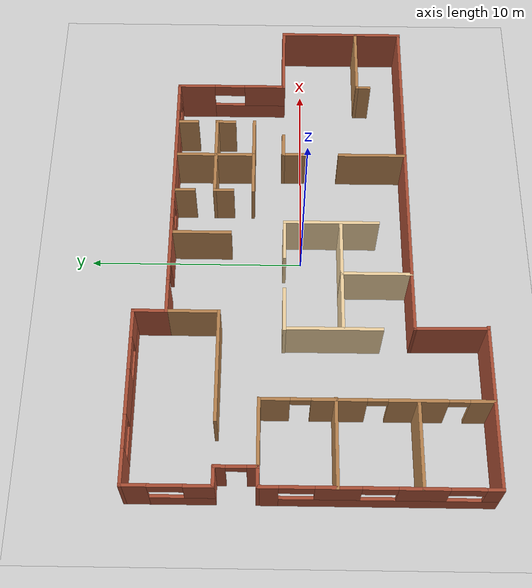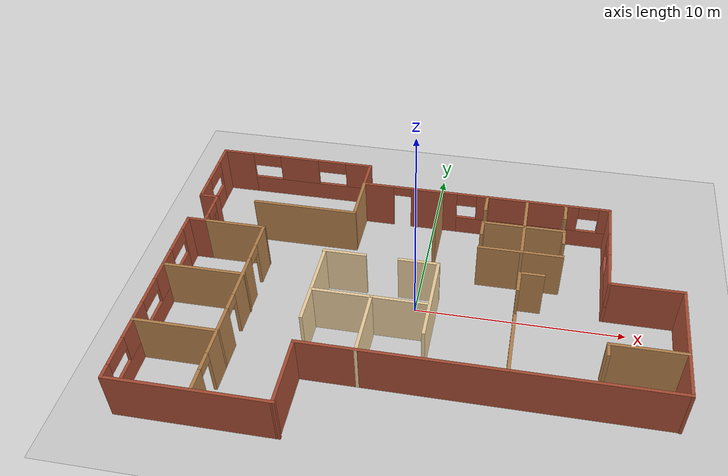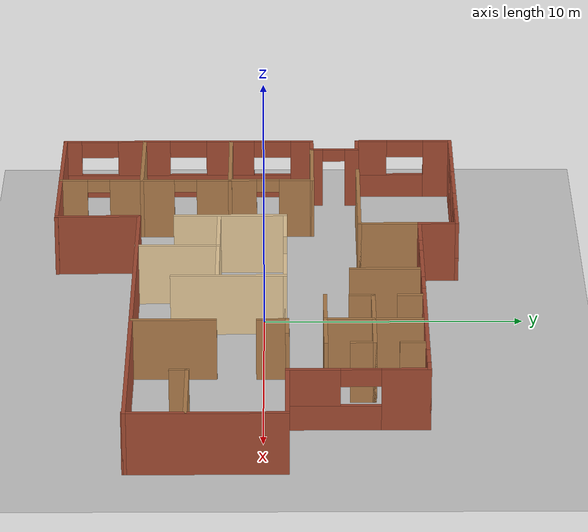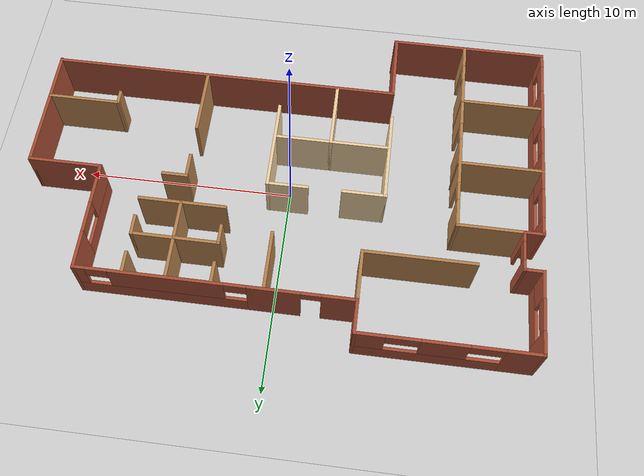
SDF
<sdf version="1.6">
 <world name="default">
  <model name="ground_plane">
   <static>1</static>
   <link name="link">
    <collision name="collision">
     <geometry><plane><normal>0 0 1</normal><size>100 100</size></plane></geometry>
     <surface>
      <contact><collide_bitmask>65535</collide_bitmask></contact>
      <friction><ode><mu>100</mu><mu2>50</mu2></ode></friction>
     </surface>
    </collision>
    <visual name="visual">
     <cast_shadows>0</cast_shadows>
     <geometry><plane><normal>0 0 1</normal><size>100 100</size></plane></geometry>
     <material>
      <script><uri>file://media/materials/scripts/gazebo.material</uri><name>Gazebo/Grey</name></script>
     </material>
    </visual>
   </link>
  </model>
  <model name="MyUdacityOffice">
   <pose>0.26489 -0.33383 0 0 -0 0</pose>
   <link name="Wall_100">
    <collision name="Wall_100_Collision">
     <geometry><box><size>2.089 0.15 2.5</size></box></geometry>
     <pose>0 0 1.25 0 -0 0</pose>
    </collision>
    <visual name="Wall_100_Visual">
     <pose>0 0 1.25 0 -0 0</pose>
     <geometry><box><size>2.089 0.15 2.5</size></box></geometry>
     <material>
      <script><uri>file://media/materials/scripts/gazebo.material</uri><name>Gazebo/Wood</name></script>
      <ambient>0.760784 0.662745 0.627451 1</ambient>
     </material>
     <meta><layer>0</layer></meta>
    </visual>
    <pose>5.4385 2.65847 0 0 -0 0</pose>
   </link>
   <link name="Wall_102">
    <collision name="Wall_102_Collision">
     <geometry><box><size>3.531 0.15 2.5</size></box></geometry>
     <pose>0 0 1.25 0 -0 0</pose>
    </collision>
    <visual name="Wall_102_Visual">
     <pose>0 0 1.25 0 -0 0</pose>
     <geometry><box><size>3.531 0.15 2.5</size></box></geometry>
     <material>
      <script><uri>file://media/materials/scripts/gazebo.material</uri><name>Gazebo/Bricks</name></script>
      <ambient>0.760784 0.662745 0.627451 1</ambient>
     </material>
     <meta><layer>0</layer></meta>
    </visual>
    <pose>10.2845 1.22547 0 0 -0 0</pose>
   </link>
   <link name="Wall_106">
    <collision name="Wall_106_Collision">
     <geometry><box><size>1.637 0.15 2.5</size></box></geometry>
     <pose>0 0 1.25 0 -0 0</pose>
    </collision>
    <visual name="Wall_106_Visual">
     <pose>0 0 1.25 0 -0 0</pose>
     <geometry><box><size>1.637 0.15 2.5</size></box></geometry>
     <material>
      <script><uri>file://media/materials/scripts/gazebo.material</uri><name>Gazebo/Bricks</name></script>
      <ambient>0.760784 0.662745 0.627451 1</ambient>
     </material>
     <meta><layer>0</layer></meta>
    </visual>
    <pose>-3.975 7.18196 0 0 0 -1.5708</pose>
   </link>
   <link name="Wall_108">
    <collision name="Wall_108_Collision">
     <geometry><box><size>2.513 0.15 2.5</size></box></geometry>
     <pose>0 0 1.25 0 -0 0</pose>
    </collision>
    <visual name="Wall_108_Visual">
     <pose>0 0 1.25 0 -0 0</pose>
     <geometry><box><size>2.513 0.15 2.5</size></box></geometry>
     <material>
      <script><uri>file://media/materials/scripts/gazebo.material</uri><name>Gazebo/Wood</name></script>
      <ambient>0.760784 0.662745 0.627451 1</ambient>
     </material>
     <meta><layer>0</layer></meta>
    </visual>
    <pose>-3.975 5.25697 0 0 0 -1.5708</pose>
   </link>
   <link name="Wall_110">
    <collision name="Wall_110_Collision">
     <geometry><box><size>5.25 0.15 2.5</size></box></geometry>
     <pose>0 0 1.25 0 -0 0</pose>
    </collision>
    <visual name="Wall_110_Visual">
     <pose>0 0 1.25 0 -0 0</pose>
     <geometry><box><size>5.25 0.15 2.5</size></box></geometry>
     <material>
      <script><uri>file://media/materials/scripts/gazebo.material</uri><name>Gazebo/Wood</name></script>
      <ambient>0.760784 0.662745 0.627451 1</ambient>
     </material>
     <meta><layer>0</layer></meta>
    </visual>
    <pose>-6.525 4.07547 0 0 -0 3.14159</pose>
   </link>
   <link name="Wall_112">
    <collision name="Wall_112_Collision">
     <geometry><box><size>3.508 0.15 2.5</size></box></geometry>
     <pose>0 0 1.25 0 -0 0</pose>
    </collision>
    <visual name="Wall_112_Visual">
     <pose>0 0 1.25 0 -0 0</pose>
     <geometry><box><size>3.508 0.15 2.5</size></box></geometry>
     <material>
      <script><uri>file://media/materials/scripts/gazebo.material</uri><name>Gazebo/Wood</name></script>
      <ambient>0.760784 0.662745 0.627451 1</ambient>
     </material>
     <meta><layer>0</layer></meta>
    </visual>
    <pose>10.273 -2.44954 0 0 -0 3.14159</pose>
   </link>
   <link name="Wall_115">
    <collision name="Wall_115_Collision">
     <geometry><box><size>0.75 0.15 2.5</size></box></geometry>
     <pose>0 0 1.25 0 -0 0</pose>
    </collision>
    <visual name="Wall_115_Visual">
     <pose>0 0 1.25 0 -0 0</pose>
     <geometry><box><size>0.75 0.15 2.5</size></box></geometry>
     <material>
      <script><uri>file://media/materials/scripts/gazebo.material</uri><name>Gazebo/Wood</name></script>
      <ambient>0.760784 0.662745 0.627451 1</ambient>
     </material>
     <meta><layer>0</layer></meta>
    </visual>
    <pose>8.594 -2.74953 0 0 0 -1.5708</pose>
   </link>
   <link name="Wall_117">
    <collision name="Wall_117_Collision">
     <geometry><box><size>1.25 0.15 2.5</size></box></geometry>
     <pose>0 0 1.25 0 -0 0</pose>
    </collision>
    <visual name="Wall_117_Visual">
     <pose>0 0 1.25 0 -0 0</pose>
     <geometry><box><size>1.25 0.15 2.5</size></box></geometry>
     <material>
      <script><uri>file://media/materials/scripts/gazebo.material</uri><name>Gazebo/Wood</name></script>
      <ambient>0.760784 0.662745 0.627451 1</ambient>
     </material>
     <meta><layer>0</layer></meta>
    </visual>
    <pose>5.055 1.22547 0 0 -0 0</pose>
   </link>
   <link name="Wall_119">
    <collision name="Wall_119_Collision">
     <geometry><box><size>1.25 0.15 2.5</size></box></geometry>
     <pose>0 0 1.25 0 -0 0</pose>
    </collision>
    <visual name="Wall_119_Visual">
     <pose>0 0 1.25 0 -0 0</pose>
     <geometry><box><size>1.25 0.15 2.5</size></box></geometry>
     <material>
      <script><uri>file://media/materials/scripts/gazebo.material</uri><name>Gazebo/Wood</name></script>
      <ambient>0.760784 0.662745 0.627451 1</ambient>
     </material>
     <meta><layer>0</layer></meta>
    </visual>
    <pose>4.505 0.675465 0 0 0 -1.5708</pose>
   </link>
   <link name="Wall_12">
    <pose>-11.975 -2.84953 0 0 0 -1.5708</pose>
    <visual name="Wall_12_Visual_0">
     <pose>-4.67804 0 1.25 0 -0 0</pose>
     <geometry><box><size>0.943917 0.15 2.5</size></box></geometry>
     <material>
      <script><uri>file://media/materials/scripts/gazebo.material</uri><name>Gazebo/Bricks</name></script>
      <ambient>1 1 1 1</ambient>
     </material>
     <meta><layer>0</layer></meta>
    </visual>
    <collision name="Wall_12_Collision_0">
     <geometry><box><size>0.943917 0.15 2.5</size></box></geometry>
     <pose>-4.67804 0 1.25 0 -0 0</pose>
    </collision>
    <visual name="Wall_12_Visual_1">
     <pose>0.471958 0 0.5 0 -0 0</pose>
     <geometry><box><size>9.35608 0.15 1</size></box></geometry>
     <material>
      <script><uri>file://media/materials/scripts/gazebo.material</uri><name>Gazebo/Bricks</name></script>
      <ambient>1 1 1 1</ambient>
     </material>
     <meta><layer>0</layer></meta>
    </visual>
    <collision name="Wall_12_Collision_1">
     <geometry><box><size>9.35608 0.15 1</size></box></geometry>
     <pose>0.471958 0 0.5 0 -0 0</pose>
    </collision>
    <visual name="Wall_12_Visual_2">
     <pose>-1.72352 0 1.75 0 -0 0</pose>
     <geometry><box><size>1.96513 0.15 1.5</size></box></geometry>
     <material>
      <script><uri>file://media/materials/scripts/gazebo.material</uri><name>Gazebo/Bricks</name></script>
      <ambient>1 1 1 1</ambient>
     </material>
     <meta><layer>0</layer></meta>
    </visual>
    <collision name="Wall_12_Collision_2">
     <geometry><box><size>1.96513 0.15 1.5</size></box></geometry>
     <pose>-1.72352 0 1.75 0 -0 0</pose>
    </collision>
    <visual name="Wall_12_Visual_3">
     <pose>1.83263 0 1.75 0 -0 0</pose>
     <geometry><box><size>2.14718 0.15 1.5</size></box></geometry>
     <material>
      <script><uri>file://media/materials/scripts/gazebo.material</uri><name>Gazebo/Bricks</name></script>
      <ambient>1 1 1 1</ambient>
     </material>
     <meta><layer>0</layer></meta>
    </visual>
    <collision name="Wall_12_Collision_3">
     <geometry><box><size>2.14718 0.15 1.5</size></box></geometry>
     <pose>1.83263 0 1.75 0 -0 0</pose>
    </collision>
    <visual name="Wall_12_Visual_4">
     <pose>4.77811 0 1.75 0 -0 0</pose>
     <geometry><box><size>0.743774 0.15 1.5</size></box></geometry>
     <material>
      <script><uri>file://media/materials/scripts/gazebo.material</uri><name>Gazebo/Bricks</name></script>
      <ambient>1 1 1 1</ambient>
     </material>
     <meta><layer>0</layer></meta>
    </visual>
    <collision name="Wall_12_Collision_4">
     <geometry><box><size>0.743774 0.15 1.5</size></box></geometry>
     <pose>4.77811 0 1.75 0 -0 0</pose>
    </collision>
    <visual name="Wall_12_Visual_5">
     <pose>-3.45608 0 2.15 0 -0 0</pose>
     <geometry><box><size>1.5 0.15 0.7</size></box></geometry>
     <material>
      <script><uri>file://media/materials/scripts/gazebo.material</uri><name>Gazebo/Bricks</name></script>
      <ambient>1 1 1 1</ambient>
     </material>
     <meta><layer>0</layer></meta>
    </visual>
    <collision name="Wall_12_Collision_5">
     <geometry><box><size>1.5 0.15 0.7</size></box></geometry>
     <pose>-3.45608 0 2.15 0 -0 0</pose>
    </collision>
    <visual name="Wall_12_Visual_6">
     <pose>0.009042 0 2.15 0 -0 0</pose>
     <geometry><box><size>1.5 0.15 0.7</size></box></geometry>
     <material>
      <script><uri>file://media/materials/scripts/gazebo.material</uri><name>Gazebo/Bricks</name></script>
      <ambient>1 1 1 1</ambient>
     </material>
     <meta><layer>0</layer></meta>
    </visual>
    <collision name="Wall_12_Collision_6">
     <geometry><box><size>1.5 0.15 0.7</size></box></geometry>
     <pose>0.009042 0 2.15 0 -0 0</pose>
    </collision>
    <visual name="Wall_12_Visual_7">
     <pose>3.65623 0 2.15 0 -0 0</pose>
     <geometry><box><size>1.5 0.15 0.7</size></box></geometry>
     <material>
      <script><uri>file://media/materials/scripts/gazebo.material</uri><name>Gazebo/Bricks</name></script>
      <ambient>1 1 1 1</ambient>
     </material>
     <meta><layer>0</layer></meta>
    </visual>
    <collision name="Wall_12_Collision_7">
     <geometry><box><size>1.5 0.15 0.7</size></box></geometry>
     <pose>3.65623 0 2.15 0 -0 0</pose>
    </collision>
   </link>
   <link name="Wall_121">
    <collision name="Wall_121_Collision">
     <geometry><box><size>3.25 0.15 2.5</size></box></geometry>
     <pose>0 0 1.25 0 -0 0</pose>
    </collision>
    <visual name="Wall_121_Visual">
     <pose>0 0 1.25 0 -0 0</pose>
     <geometry><box><size>3.25 0.15 2.5</size></box></geometry>
     <material>
      <script><uri>file://media/materials/scripts/gazebo.material</uri><name>Gazebo/Wood</name></script>
      <ambient>0.760784 0.662745 0.627451 1</ambient>
     </material>
     <meta><layer>0</layer></meta>
    </visual>
    <pose>4.505 -3.04954 0 0 -0 1.5708</pose>
   </link>
   <link name="Wall_125">
    <collision name="Wall_125_Collision">
     <geometry><box><size>4.5 0.15 2.5</size></box></geometry>
     <pose>0 0 1.25 0 -0 0</pose>
    </collision>
    <visual name="Wall_125_Visual">
     <pose>0 0 1.25 0 -0 0</pose>
     <geometry><box><size>4.5 0.15 2.5</size></box></geometry>
     <material>
      <script><uri>file://media/materials/scripts/gazebo.material</uri><name>Gazebo/Grey</name></script>
      <ambient>0.921569 0.807843 0.615686 1</ambient>
     </material>
     <meta><layer>0</layer></meta>
    </visual>
    <pose>-4.75677 -1.03253 0 0 0 -1.5708</pose>
   </link>
   <link name="Wall_129">
    <collision name="Wall_129_Collision">
     <geometry><box><size>2.12236 0.15 2.5</size></box></geometry>
     <pose>0 0 1.25 0 -0 0</pose>
    </collision>
    <visual name="Wall_129_Visual">
     <pose>0 0 1.25 0 -0 0</pose>
     <geometry><box><size>2.12236 0.15 2.5</size></box></geometry>
     <material>
      <script><uri>file://media/materials/scripts/gazebo.material</uri><name>Gazebo/Grey</name></script>
      <ambient>0.921569 0.807843 0.615686 1</ambient>
     </material>
     <meta><layer>0</layer></meta>
    </visual>
    <pose>-3.80118 1.14247 0 0 -0 0</pose>
   </link>
   <link name="Wall_133">
    <collision name="Wall_133_Collision">
     <geometry><box><size>5.39282 0.15 2.5</size></box></geometry>
     <pose>0 0 1.25 0 -0 0</pose>
    </collision>
    <visual name="Wall_133_Visual">
     <pose>0 0 1.25 0 -0 0</pose>
     <geometry><box><size>5.39282 0.15 2.5</size></box></geometry>
     <material>
      <script><uri>file://media/materials/scripts/gazebo.material</uri><name>Gazebo/Grey</name></script>
      <ambient>0.921569 0.807843 0.615686 1</ambient>
     </material>
     <meta><layer>0</layer></meta>
    </visual>
    <pose>-2.04359 -1.47754 0 0 -0 0</pose>
   </link>
   <link name="Wall_136">
    <collision name="Wall_136_Collision">
     <geometry><box><size>3.328 0.15 2.5</size></box></geometry>
     <pose>0 0 1.25 0 -0 0</pose>
    </collision>
    <visual name="Wall_136_Visual">
     <pose>0 0 1.25 0 -0 0</pose>
     <geometry><box><size>3.328 0.15 2.5</size></box></geometry>
     <material>
      <script><uri>file://media/materials/scripts/gazebo.material</uri><name>Gazebo/Grey</name></script>
      <ambient>0.921569 0.807843 0.615686 1</ambient>
     </material>
     <meta><layer>0</layer></meta>
    </visual>
    <pose>-1.971 -3.06654 0 0 0 -1.5708</pose>
   </link>
   <link name="Wall_140">
    <collision name="Wall_140_Collision">
     <geometry><box><size>4.5 0.15 2.5</size></box></geometry>
     <pose>0 0 1.25 0 -0 0</pose>
    </collision>
    <visual name="Wall_140_Visual">
     <pose>0 0 1.25 0 -0 0</pose>
     <geometry><box><size>4.5 0.15 2.5</size></box></geometry>
     <material>
      <script><uri>file://media/materials/scripts/gazebo.material</uri><name>Gazebo/Grey</name></script>
      <ambient>0.921569 0.807843 0.615686 1</ambient>
     </material>
     <meta><layer>0</layer></meta>
    </visual>
    <pose>0.710001 -1.03253 0 0 -0 1.5708</pose>
   </link>
   <link name="Wall_142">
    <collision name="Wall_142_Collision">
     <geometry><box><size>2 0.15 2.5</size></box></geometry>
     <pose>0 0 1.25 0 -0 0</pose>
    </collision>
    <visual name="Wall_142_Visual">
     <pose>0 0 1.25 0 -0 0</pose>
     <geometry><box><size>2 0.15 2.5</size></box></geometry>
     <material>
      <script><uri>file://media/materials/scripts/gazebo.material</uri><name>Gazebo/Grey</name></script>
      <ambient>0.921569 0.807843 0.615686 1</ambient>
     </material>
     <meta><layer>0</layer></meta>
    </visual>
    <pose>-0.215 1.14247 0 0 -0 3.14159</pose>
   </link>
   <link name="Wall_15">
    <pose>-11.125 3.15047 0 0 0 -1.5708</pose>
    <visual name="Wall_15_Visual_0">
     <pose>-0.718002 0 1.25 0 -0 0</pose>
     <geometry><box><size>0.563996 0.15 2.5</size></box></geometry>
     <material>
      <script><uri>file://media/materials/scripts/gazebo.material</uri><name>Gazebo/Bricks</name></script>
      <ambient>0.760784 0.662745 0.627451 1</ambient>
     </material>
     <meta><layer>0</layer></meta>
    </visual>
    <collision name="Wall_15_Collision_0">
     <geometry><box><size>0.563996 0.15 2.5</size></box></geometry>
     <pose>-0.718002 0 1.25 0 -0 0</pose>
    </collision>
    <visual name="Wall_15_Visual_1">
     <pose>0.731998 0 1.25 0 -0 0</pose>
     <geometry><box><size>0.536004 0.15 2.5</size></box></geometry>
     <material>
      <script><uri>file://media/materials/scripts/gazebo.material</uri><name>Gazebo/Bricks</name></script>
      <ambient>0.760784 0.662745 0.627451 1</ambient>
     </material>
     <meta><layer>0</layer></meta>
    </visual>
    <collision name="Wall_15_Collision_1">
     <geometry><box><size>0.536004 0.15 2.5</size></box></geometry>
     <pose>0.731998 0 1.25 0 -0 0</pose>
    </collision>
    <visual name="Wall_15_Visual_2">
     <pose>0.013996 0 2.25 0 -0 0</pose>
     <geometry><box><size>0.9 0.15 0.5</size></box></geometry>
     <material>
      <script><uri>file://media/materials/scripts/gazebo.material</uri><name>Gazebo/Bricks</name></script>
      <ambient>0.760784 0.662745 0.627451 1</ambient>
     </material>
     <meta><layer>0</layer></meta>
    </visual>
    <collision name="Wall_15_Collision_2">
     <geometry><box><size>0.9 0.15 0.5</size></box></geometry>
     <pose>0.013996 0 2.25 0 -0 0</pose>
    </collision>
   </link>
   <link name="Wall_16">
    <collision name="Wall_16_Collision">
     <geometry><box><size>1 0.15 2.5</size></box></geometry>
     <pose>0 0 1.25 0 -0 0</pose>
    </collision>
    <visual name="Wall_16_Visual">
     <pose>0 0 1.25 0 -0 0</pose>
     <geometry><box><size>1 0.15 2.5</size></box></geometry>
     <material>
      <script><uri>file://media/materials/scripts/gazebo.material</uri><name>Gazebo/Bricks</name></script>
      <ambient>0.760784 0.662745 0.627451 1</ambient>
     </material>
     <meta><layer>0</layer></meta>
    </visual>
    <pose>-11.55 2.22546 0 0 -0 3.14159</pose>
   </link>
   <link name="Wall_3">
    <pose>-7.975 7.92546 0 0 -0 0</pose>
    <visual name="Wall_3_Visual_0">
     <pose>-3.24686 0 1.25 0 -0 0</pose>
     <geometry><box><size>1.65628 0.15 2.5</size></box></geometry>
     <material>
      <script><uri>file://media/materials/scripts/gazebo.material</uri><name>Gazebo/Bricks</name></script>
      <ambient>0.760784 0.662745 0.627451 1</ambient>
     </material>
     <meta><layer>0</layer></meta>
    </visual>
    <collision name="Wall_3_Collision_0">
     <geometry><box><size>1.65628 0.15 2.5</size></box></geometry>
     <pose>-3.24686 0 1.25 0 -0 0</pose>
    </collision>
    <visual name="Wall_3_Visual_1">
     <pose>0.828141 0 0.5 0 -0 0</pose>
     <geometry><box><size>6.49372 0.15 1</size></box></geometry>
     <material>
      <script><uri>file://media/materials/scripts/gazebo.material</uri><name>Gazebo/Bricks</name></script>
      <ambient>0.760784 0.662745 0.627451 1</ambient>
     </material>
     <meta><layer>0</layer></meta>
    </visual>
    <collision name="Wall_3_Collision_1">
     <geometry><box><size>6.49372 0.15 1</size></box></geometry>
     <pose>0.828141 0 0.5 0 -0 0</pose>
    </collision>
    <visual name="Wall_3_Visual_2">
     <pose>0.127007 0 1.75 0 -0 0</pose>
     <geometry><box><size>2.09145 0.15 1.5</size></box></geometry>
     <material>
      <script><uri>file://media/materials/scripts/gazebo.material</uri><name>Gazebo/Bricks</name></script>
      <ambient>0.760784 0.662745 0.627451 1</ambient>
     </material>
     <meta><layer>0</layer></meta>
    </visual>
    <collision name="Wall_3_Collision_2">
     <geometry><box><size>2.09145 0.15 1.5</size></box></geometry>
     <pose>0.127007 0 1.75 0 -0 0</pose>
    </collision>
    <visual name="Wall_3_Visual_3">
     <pose>3.37387 0 1.75 0 -0 0</pose>
     <geometry><box><size>1.40227 0.15 1.5</size></box></geometry>
     <material>
      <script><uri>file://media/materials/scripts/gazebo.material</uri><name>Gazebo/Bricks</name></script>
      <ambient>0.760784 0.662745 0.627451 1</ambient>
     </material>
     <meta><layer>0</layer></meta>
    </visual>
    <collision name="Wall_3_Collision_3">
     <geometry><box><size>1.40227 0.15 1.5</size></box></geometry>
     <pose>3.37387 0 1.75 0 -0 0</pose>
    </collision>
    <visual name="Wall_3_Visual_4">
     <pose>-1.66872 0 2.15 0 -0 0</pose>
     <geometry><box><size>1.5 0.15 0.7</size></box></geometry>
     <material>
      <script><uri>file://media/materials/scripts/gazebo.material</uri><name>Gazebo/Bricks</name></script>
      <ambient>0.760784 0.662745 0.627451 1</ambient>
     </material>
     <meta><layer>0</layer></meta>
    </visual>
    <collision name="Wall_3_Collision_4">
     <geometry><box><size>1.5 0.15 0.7</size></box></geometry>
     <pose>-1.66872 0 2.15 0 -0 0</pose>
    </collision>
    <visual name="Wall_3_Visual_5">
     <pose>1.92273 0 2.15 0 -0 0</pose>
     <geometry><box><size>1.5 0.15 0.7</size></box></geometry>
     <material>
      <script><uri>file://media/materials/scripts/gazebo.material</uri><name>Gazebo/Bricks</name></script>
      <ambient>0.760784 0.662745 0.627451 1</ambient>
     </material>
     <meta><layer>0</layer></meta>
    </visual>
    <collision name="Wall_3_Collision_5">
     <geometry><box><size>1.5 0.15 0.7</size></box></geometry>
     <pose>1.92273 0 2.15 0 -0 0</pose>
    </collision>
   </link>
   <link name="Wall_30">
    <collision name="Wall_30_Collision">
     <geometry><box><size>4.05876 0.15 2.5</size></box></geometry>
     <pose>0 0 1.25 0 -0 0</pose>
    </collision>
    <visual name="Wall_30_Visual">
     <pose>0 0 1.25 0 -0 0</pose>
     <geometry><box><size>4.05876 0.15 2.5</size></box></geometry>
     <material>
      <script><uri>file://media/materials/scripts/gazebo.material</uri><name>Gazebo/Wood</name></script>
      <ambient>0.760784 0.662745 0.627451 1</ambient>
     </material>
     <meta><layer>0</layer></meta>
    </visual>
    <pose>-10.0205 -1.09153 0 0 -0 0</pose>
   </link>
   <link name="Wall_34">
    <collision name="Wall_34_Collision">
     <geometry><box><size>4.01576 0.15 2.5</size></box></geometry>
     <pose>0 0 1.25 0 -0 0</pose>
    </collision>
    <visual name="Wall_34_Visual">
     <pose>0 0 1.25 0 -0 0</pose>
     <geometry><box><size>4.01576 0.15 2.5</size></box></geometry>
     <material>
      <script><uri>file://media/materials/scripts/gazebo.material</uri><name>Gazebo/Wood</name></script>
      <ambient>0.760784 0.662745 0.627451 1</ambient>
     </material>
     <meta><layer>0</layer></meta>
    </visual>
    <pose>-10.042 -4.65329 0 0 -0 0</pose>
   </link>
   <link name="Wall_36">
    <collision name="Wall_36_Collision">
     <geometry><box><size>7.5 0.15 2.5</size></box></geometry>
     <pose>0 0 1.25 0 -0 0</pose>
    </collision>
    <visual name="Wall_36_Visual">
     <pose>0 0 1.25 0 -0 0</pose>
     <geometry><box><size>7.5 0.15 2.5</size></box></geometry>
     <material>
      <script><uri>file://media/materials/scripts/gazebo.material</uri><name>Gazebo/Bricks</name></script>
      <ambient>0.760784 0.662745 0.627451 1</ambient>
     </material>
     <meta><layer>0</layer></meta>
    </visual>
    <pose>-8.3 -7.92453 0 0 -0 0</pose>
   </link>
   <link name="Wall_38">
    <pose>-8.111 -2.83103 0 0 -0 1.5704</pose>
    <visual name="Wall_38_Visual_0">
     <pose>-4.57491 0 1.25 0 -0 0</pose>
     <geometry><box><size>1.11318 0.15 2.5</size></box></geometry>
     <material>
      <script><uri>file://media/materials/scripts/gazebo.material</uri><name>Gazebo/Wood</name></script>
      <ambient>0.760784 0.662745 0.627451 1</ambient>
     </material>
     <meta><layer>0</layer></meta>
    </visual>
    <collision name="Wall_38_Collision_0">
     <geometry><box><size>1.11318 0.15 2.5</size></box></geometry>
     <pose>-4.57491 0 1.25 0 -0 0</pose>
    </collision>
    <visual name="Wall_38_Visual_1">
     <pose>-1.81271 0 1.25 0 -0 0</pose>
     <geometry><box><size>2.6112 0.15 2.5</size></box></geometry>
     <material>
      <script><uri>file://media/materials/scripts/gazebo.material</uri><name>Gazebo/Wood</name></script>
      <ambient>0.760784 0.662745 0.627451 1</ambient>
     </material>
     <meta><layer>0</layer></meta>
    </visual>
    <collision name="Wall_38_Collision_1">
     <geometry><box><size>2.6112 0.15 2.5</size></box></geometry>
     <pose>-1.81271 0 1.25 0 -0 0</pose>
    </collision>
    <visual name="Wall_38_Visual_2">
     <pose>1.60633 0 1.25 0 -0 0</pose>
     <geometry><box><size>2.42689 0.15 2.5</size></box></geometry>
     <material>
      <script><uri>file://media/materials/scripts/gazebo.material</uri><name>Gazebo/Wood</name></script>
      <ambient>0.760784 0.662745 0.627451 1</ambient>
     </material>
     <meta><layer>0</layer></meta>
    </visual>
    <collision name="Wall_38_Collision_2">
     <geometry><box><size>2.42689 0.15 2.5</size></box></geometry>
     <pose>1.60633 0 1.25 0 -0 0</pose>
    </collision>
    <visual name="Wall_38_Visual_3">
     <pose>4.42564 0 1.25 0 -0 0</pose>
     <geometry><box><size>1.41172 0.15 2.5</size></box></geometry>
     <material>
      <script><uri>file://media/materials/scripts/gazebo.material</uri><name>Gazebo/Wood</name></script>
      <ambient>0.760784 0.662745 0.627451 1</ambient>
     </material>
     <meta><layer>0</layer></meta>
    </visual>
    <collision name="Wall_38_Collision_3">
     <geometry><box><size>1.41172 0.15 2.5</size></box></geometry>
     <pose>4.42564 0 1.25 0 -0 0</pose>
    </collision>
    <visual name="Wall_38_Visual_4">
     <pose>-3.56832 0 2.25 0 -0 0</pose>
     <geometry><box><size>0.9 0.15 0.5</size></box></geometry>
     <material>
      <script><uri>file://media/materials/scripts/gazebo.material</uri><name>Gazebo/Wood</name></script>
      <ambient>0.760784 0.662745 0.627451 1</ambient>
     </material>
     <meta><layer>0</layer></meta>
    </visual>
    <collision name="Wall_38_Collision_4">
     <geometry><box><size>0.9 0.15 0.5</size></box></geometry>
     <pose>-3.56832 0 2.25 0 -0 0</pose>
    </collision>
    <visual name="Wall_38_Visual_5">
     <pose>-0.057112 0 2.25 0 -0 0</pose>
     <geometry><box><size>0.9 0.15 0.5</size></box></geometry>
     <material>
      <script><uri>file://media/materials/scripts/gazebo.material</uri><name>Gazebo/Wood</name></script>
      <ambient>0.760784 0.662745 0.627451 1</ambient>
     </material>
     <meta><layer>0</layer></meta>
    </visual>
    <collision name="Wall_38_Collision_5">
     <geometry><box><size>0.9 0.15 0.5</size></box></geometry>
     <pose>-0.057112 0 2.25 0 -0 0</pose>
    </collision>
    <visual name="Wall_38_Visual_6">
     <pose>3.26978 0 2.25 0 -0 0</pose>
     <geometry><box><size>0.9 0.15 0.5</size></box></geometry>
     <material>
      <script><uri>file://media/materials/scripts/gazebo.material</uri><name>Gazebo/Wood</name></script>
      <ambient>0.760784 0.662745 0.627451 1</ambient>
     </material>
     <meta><layer>0</layer></meta>
    </visual>
    <collision name="Wall_38_Collision_6">
     <geometry><box><size>0.9 0.15 0.5</size></box></geometry>
     <pose>3.26978 0 2.25 0 -0 0</pose>
    </collision>
   </link>
   <link name="Wall_40">
    <collision name="Wall_40_Collision">
     <geometry><box><size>3.166 0.15 2.5</size></box></geometry>
     <pose>0 0 1.25 0 -0 0</pose>
    </collision>
    <visual name="Wall_40_Visual">
     <pose>0 0 1.25 0 -0 0</pose>
     <geometry><box><size>3.166 0.15 2.5</size></box></geometry>
     <material>
      <script><uri>file://media/materials/scripts/gazebo.material</uri><name>Gazebo/Wood</name></script>
      <ambient>0.760784 0.662745 0.627451 1</ambient>
     </material>
     <meta><layer>0</layer></meta>
    </visual>
    <pose>-9.617 2.22546 0 0 -0 3.14159</pose>
   </link>
   <link name="Wall_47">
    <pose>2.3095 6.43846 0 0 -0 0</pose>
    <visual name="Wall_47_Visual_0">
     <pose>-5.53815 0 1.25 0 -0 0</pose>
     <geometry><box><size>1.64269 0.15 2.5</size></box></geometry>
     <material>
      <script><uri>file://media/materials/scripts/gazebo.material</uri><name>Gazebo/Bricks</name></script>
      <ambient>0.760784 0.662745 0.627451 1</ambient>
     </material>
     <meta><layer>0</layer></meta>
    </visual>
    <collision name="Wall_47_Collision_0">
     <geometry><box><size>1.64269 0.15 2.5</size></box></geometry>
     <pose>-5.53815 0 1.25 0 -0 0</pose>
    </collision>
    <visual name="Wall_47_Visual_1">
     <pose>-2.61941 0 1.25 0 -0 0</pose>
     <geometry><box><size>2.3948 0.15 2.5</size></box></geometry>
     <material>
      <script><uri>file://media/materials/scripts/gazebo.material</uri><name>Gazebo/Bricks</name></script>
      <ambient>0.760784 0.662745 0.627451 1</ambient>
     </material>
     <meta><layer>0</layer></meta>
    </visual>
    <collision name="Wall_47_Collision_1">
     <geometry><box><size>2.3948 0.15 2.5</size></box></geometry>
     <pose>-2.61941 0 1.25 0 -0 0</pose>
    </collision>
    <visual name="Wall_47_Visual_2">
     <pose>2.46875 0 0.5 0 -0 0</pose>
     <geometry><box><size>7.78151 0.15 1</size></box></geometry>
     <material>
      <script><uri>file://media/materials/scripts/gazebo.material</uri><name>Gazebo/Bricks</name></script>
      <ambient>0.760784 0.662745 0.627451 1</ambient>
     </material>
     <meta><layer>0</layer></meta>
    </visual>
    <collision name="Wall_47_Collision_2">
     <geometry><box><size>7.78151 0.15 1</size></box></geometry>
     <pose>2.46875 0 0.5 0 -0 0</pose>
    </collision>
    <visual name="Wall_47_Visual_3">
     <pose>2.16693 0 1.75 0 -0 0</pose>
     <geometry><box><size>5.17786 0.15 1.5</size></box></geometry>
     <material>
      <script><uri>file://media/materials/scripts/gazebo.material</uri><name>Gazebo/Bricks</name></script>
      <ambient>0.760784 0.662745 0.627451 1</ambient>
     </material>
     <meta><layer>0</layer></meta>
    </visual>
    <collision name="Wall_47_Collision_3">
     <geometry><box><size>5.17786 0.15 1.5</size></box></geometry>
     <pose>2.16693 0 1.75 0 -0 0</pose>
    </collision>
    <visual name="Wall_47_Visual_4">
     <pose>6.05768 0 1.75 0 -0 0</pose>
     <geometry><box><size>0.603641 0.15 1.5</size></box></geometry>
     <material>
      <script><uri>file://media/materials/scripts/gazebo.material</uri><name>Gazebo/Bricks</name></script>
      <ambient>0.760784 0.662745 0.627451 1</ambient>
     </material>
     <meta><layer>0</layer></meta>
    </visual>
    <collision name="Wall_47_Collision_4">
     <geometry><box><size>0.603641 0.15 1.5</size></box></geometry>
     <pose>6.05768 0 1.75 0 -0 0</pose>
    </collision>
    <visual name="Wall_47_Visual_5">
     <pose>-0.922005 0 2.15 0 -0 0</pose>
     <geometry><box><size>1 0.15 0.7</size></box></geometry>
     <material>
      <script><uri>file://media/materials/scripts/gazebo.material</uri><name>Gazebo/Bricks</name></script>
      <ambient>0.760784 0.662745 0.627451 1</ambient>
     </material>
     <meta><layer>0</layer></meta>
    </visual>
    <collision name="Wall_47_Collision_5">
     <geometry><box><size>1 0.15 0.7</size></box></geometry>
     <pose>-0.922005 0 2.15 0 -0 0</pose>
    </collision>
    <visual name="Wall_47_Visual_6">
     <pose>5.25586 0 2.15 0 -0 0</pose>
     <geometry><box><size>1 0.15 0.7</size></box></geometry>
     <material>
      <script><uri>file://media/materials/scripts/gazebo.material</uri><name>Gazebo/Bricks</name></script>
      <ambient>0.760784 0.662745 0.627451 1</ambient>
     </material>
     <meta><layer>0</layer></meta>
    </visual>
    <collision name="Wall_47_Collision_6">
     <geometry><box><size>1 0.15 0.7</size></box></geometry>
     <pose>5.25586 0 2.15 0 -0 0</pose>
    </collision>
    <visual name="Wall_47_Visual_7">
     <pose>-4.26681 0 2.25 0 -0 0</pose>
     <geometry><box><size>0.9 0.15 0.5</size></box></geometry>
     <material>
      <script><uri>file://media/materials/scripts/gazebo.material</uri><name>Gazebo/Bricks</name></script>
      <ambient>0.760784 0.662745 0.627451 1</ambient>
     </material>
     <meta><layer>0</layer></meta>
    </visual>
    <collision name="Wall_47_Collision_7">
     <geometry><box><size>0.9 0.15 0.5</size></box></geometry>
     <pose>-4.26681 0 2.25 0 -0 0</pose>
    </collision>
   </link>
   <link name="Wall_49">
    <pose>8.594 3.83196 0 0 0 -1.5708</pose>
    <visual name="Wall_49_Visual_0">
     <pose>-1.76457 0 1.25 0 -0 0</pose>
     <geometry><box><size>1.83486 0.15 2.5</size></box></geometry>
     <material>
      <script><uri>file://media/materials/scripts/gazebo.material</uri><name>Gazebo/Bricks</name></script>
      <ambient>0.760784 0.662745 0.627451 1</ambient>
     </material>
     <meta><layer>0</layer></meta>
    </visual>
    <collision name="Wall_49_Collision_0">
     <geometry><box><size>1.83486 0.15 2.5</size></box></geometry>
     <pose>-1.76457 0 1.25 0 -0 0</pose>
    </collision>
    <visual name="Wall_49_Visual_1">
     <pose>0.91743 0 0.5 0 -0 0</pose>
     <geometry><box><size>3.52913 0.15 1</size></box></geometry>
     <material>
      <script><uri>file://media/materials/scripts/gazebo.material</uri><name>Gazebo/Bricks</name></script>
      <ambient>0.760784 0.662745 0.627451 1</ambient>
     </material>
     <meta><layer>0</layer></meta>
    </visual>
    <collision name="Wall_49_Collision_1">
     <geometry><box><size>3.52913 0.15 1</size></box></geometry>
     <pose>0.91743 0 0.5 0 -0 0</pose>
    </collision>
    <visual name="Wall_49_Visual_2">
     <pose>1.66743 0 1.75 0 -0 0</pose>
     <geometry><box><size>2.02913 0.15 1.5</size></box></geometry>
     <material>
      <script><uri>file://media/materials/scripts/gazebo.material</uri><name>Gazebo/Bricks</name></script>
      <ambient>0.760784 0.662745 0.627451 1</ambient>
     </material>
     <meta><layer>0</layer></meta>
    </visual>
    <collision name="Wall_49_Collision_2">
     <geometry><box><size>2.02913 0.15 1.5</size></box></geometry>
     <pose>1.66743 0 1.75 0 -0 0</pose>
    </collision>
    <visual name="Wall_49_Visual_3">
     <pose>-0.097136 0 2.15 0 -0 0</pose>
     <geometry><box><size>1.5 0.15 0.7</size></box></geometry>
     <material>
      <script><uri>file://media/materials/scripts/gazebo.material</uri><name>Gazebo/Bricks</name></script>
      <ambient>0.760784 0.662745 0.627451 1</ambient>
     </material>
     <meta><layer>0</layer></meta>
    </visual>
    <collision name="Wall_49_Collision_3">
     <geometry><box><size>1.5 0.15 0.7</size></box></geometry>
     <pose>-0.097136 0 2.15 0 -0 0</pose>
    </collision>
   </link>
   <link name="Wall_5">
    <pose>-11.975 6.00047 0 0 0 -1.5708</pose>
    <visual name="Wall_5_Visual_0">
     <pose>-1.40991 0 1.25 0 -0 0</pose>
     <geometry><box><size>1.18019 0.15 2.5</size></box></geometry>
     <material>
      <script><uri>file://media/materials/scripts/gazebo.material</uri><name>Gazebo/Bricks</name></script>
      <ambient>0.760784 0.662745 0.627451 1</ambient>
     </material>
     <meta><layer>0</layer></meta>
    </visual>
    <collision name="Wall_5_Collision_0">
     <geometry><box><size>1.18019 0.15 2.5</size></box></geometry>
     <pose>-1.40991 0 1.25 0 -0 0</pose>
    </collision>
    <visual name="Wall_5_Visual_1">
     <pose>0.590093 0 0.5 0 -0 0</pose>
     <geometry><box><size>2.81981 0.15 1</size></box></geometry>
     <material>
      <script><uri>file://media/materials/scripts/gazebo.material</uri><name>Gazebo/Bricks</name></script>
      <ambient>0.760784 0.662745 0.627451 1</ambient>
     </material>
     <meta><layer>0</layer></meta>
    </visual>
    <collision name="Wall_5_Collision_1">
     <geometry><box><size>2.81981 0.15 1</size></box></geometry>
     <pose>0.590093 0 0.5 0 -0 0</pose>
    </collision>
    <visual name="Wall_5_Visual_2">
     <pose>1.34009 0 1.75 0 -0 0</pose>
     <geometry><box><size>1.31981 0.15 1.5</size></box></geometry>
     <material>
      <script><uri>file://media/materials/scripts/gazebo.material</uri><name>Gazebo/Bricks</name></script>
      <ambient>0.760784 0.662745 0.627451 1</ambient>
     </material>
     <meta><layer>0</layer></meta>
    </visual>
    <collision name="Wall_5_Collision_2">
     <geometry><box><size>1.31981 0.15 1.5</size></box></geometry>
     <pose>1.34009 0 1.75 0 -0 0</pose>
    </collision>
    <visual name="Wall_5_Visual_3">
     <pose>-0.069814 0 2.15 0 -0 0</pose>
     <geometry><box><size>1.5 0.15 0.7</size></box></geometry>
     <material>
      <script><uri>file://media/materials/scripts/gazebo.material</uri><name>Gazebo/Bricks</name></script>
      <ambient>0.760784 0.662745 0.627451 1</ambient>
     </material>
     <meta><layer>0</layer></meta>
    </visual>
    <collision name="Wall_5_Collision_3">
     <geometry><box><size>1.5 0.15 0.7</size></box></geometry>
     <pose>-0.069814 0 2.15 0 -0 0</pose>
    </collision>
   </link>
   <link name="Wall_52">
    <collision name="Wall_52_Collision">
     <geometry><box><size>6.06118 0.15 2.5</size></box></geometry>
     <pose>0 0 1.25 0 -0 0</pose>
    </collision>
    <visual name="Wall_52_Visual">
     <pose>0 0 1.25 0 -0 0</pose>
     <geometry><box><size>6.06118 0.15 2.5</size></box></geometry>
     <material>
      <script><uri>file://media/materials/scripts/gazebo.material</uri><name>Gazebo/Bricks</name></script>
      <ambient>0.760784 0.662745 0.627451 1</ambient>
     </material>
     <meta><layer>0</layer></meta>
    </visual>
    <pose>11.975 -1.73012 0 0 0 -1.5708</pose>
   </link>
   <link name="Wall_53">
    <collision name="Wall_53_Collision">
     <geometry><box><size>16.8309 0.15 2.5</size></box></geometry>
     <pose>0 0 1.25 0 -0 0</pose>
    </collision>
    <visual name="Wall_53_Visual">
     <pose>0 0 1.25 0 -0 0</pose>
     <geometry><box><size>16.8309 0.15 2.5</size></box></geometry>
     <material>
      <script><uri>file://media/materials/scripts/gazebo.material</uri><name>Gazebo/Bricks</name></script>
      <ambient>0.760784 0.662745 0.627451 1</ambient>
     </material>
     <meta><layer>0</layer></meta>
    </visual>
    <pose>3.63455 -4.65512 0 0 -0 3.14159</pose>
   </link>
   <link name="Wall_54">
    <collision name="Wall_54_Collision">
     <geometry><box><size>3.38907 0.15 2.5</size></box></geometry>
     <pose>0 0 1.25 0 -0 0</pose>
    </collision>
    <visual name="Wall_54_Visual">
     <pose>0 0 1.25 0 -0 0</pose>
     <geometry><box><size>3.38907 0.15 2.5</size></box></geometry>
     <material>
      <script><uri>file://media/materials/scripts/gazebo.material</uri><name>Gazebo/Bricks</name></script>
      <ambient>0.760784 0.662745 0.627451 1</ambient>
     </material>
     <meta><layer>0</layer></meta>
    </visual>
    <pose>-4.68568 -6.30513 0 0 0 -1.55831</pose>
   </link>
   <link name="Wall_56">
    <collision name="Wall_56_Collision">
     <geometry><box><size>2.75 0.15 2.5</size></box></geometry>
     <pose>0 0 1.25 0 -0 0</pose>
    </collision>
    <visual name="Wall_56_Visual">
     <pose>0 0 1.25 0 -0 0</pose>
     <geometry><box><size>2.75 0.15 2.5</size></box></geometry>
     <material>
      <script><uri>file://media/materials/scripts/gazebo.material</uri><name>Gazebo/Wood</name></script>
      <ambient>0.760784 0.662745 0.627451 1</ambient>
     </material>
     <meta><layer>0</layer></meta>
    </visual>
    <pose>0.113999 4.98787 0 0 0 -1.5708</pose>
   </link>
   <link name="Wall_58">
    <collision name="Wall_58_Collision">
     <geometry><box><size>1 0.15 2.5</size></box></geometry>
     <pose>0 0 1.25 0 -0 0</pose>
    </collision>
    <visual name="Wall_58_Visual">
     <pose>0 0 1.25 0 -0 0</pose>
     <geometry><box><size>1 0.15 2.5</size></box></geometry>
     <material>
      <script><uri>file://media/materials/scripts/gazebo.material</uri><name>Gazebo/Wood</name></script>
      <ambient>0.760784 0.662745 0.627451 1</ambient>
     </material>
     <meta><layer>0</layer></meta>
    </visual>
    <pose>2.44 5.90046 0 0 0 -1.5708</pose>
   </link>
   <link name="Wall_62">
    <collision name="Wall_62_Collision">
     <geometry><box><size>1 0.15 2.5</size></box></geometry>
     <pose>0 0 1.25 0 -0 0</pose>
    </collision>
    <visual name="Wall_62_Visual">
     <pose>0 0 1.25 0 -0 0</pose>
     <geometry><box><size>1 0.15 2.5</size></box></geometry>
     <material>
      <script><uri>file://media/materials/scripts/gazebo.material</uri><name>Gazebo/Wood</name></script>
      <ambient>0.760784 0.662745 0.627451 1</ambient>
     </material>
     <meta><layer>0</layer></meta>
    </visual>
    <pose>6.408 5.90046 0 0 0 -1.5708</pose>
   </link>
   <link name="Wall_68">
    <collision name="Wall_68_Collision">
     <geometry><box><size>3.8 0.15 2.5</size></box></geometry>
     <pose>0 0 1.25 0 -0 0</pose>
    </collision>
    <visual name="Wall_68_Visual">
     <pose>0 0 1.25 0 -0 0</pose>
     <geometry><box><size>3.8 0.15 2.5</size></box></geometry>
     <material>
      <script><uri>file://media/materials/scripts/gazebo.material</uri><name>Gazebo/Wood</name></script>
      <ambient>0.760784 0.662745 0.627451 1</ambient>
     </material>
     <meta><layer>0</layer></meta>
    </visual>
    <pose>4.469 4.48346 0 0 0 -1.5708</pose>
   </link>
   <link name="Wall_7">
    <collision name="Wall_7_Collision">
     <geometry><box><size>1 0.15 2.5</size></box></geometry>
     <pose>0 0 1.25 0 -0 0</pose>
    </collision>
    <visual name="Wall_7_Visual">
     <pose>0 0 1.25 0 -0 0</pose>
     <geometry><box><size>1 0.15 2.5</size></box></geometry>
     <material>
      <script><uri>file://media/materials/scripts/gazebo.material</uri><name>Gazebo/Bricks</name></script>
      <ambient>0.760784 0.662745 0.627451 1</ambient>
     </material>
     <meta><layer>0</layer></meta>
    </visual>
    <pose>-11.55 4.07547 0 0 -0 0</pose>
   </link>
   <link name="Wall_8">
    <collision name="Wall_8_Collision">
     <geometry><box><size>0.15 0.15 2.5</size></box></geometry>
     <pose>0 0 1.25 0 -0 0</pose>
    </collision>
    <visual name="Wall_8_Visual">
     <pose>0 0 1.25 0 -0 0</pose>
     <geometry><box><size>0.15 0.15 2.5</size></box></geometry>
     <material>
      <script><uri>file://media/materials/scripts/gazebo.material</uri><name>Gazebo/Bricks</name></script>
      <ambient>0.760784 0.662745 0.627451 1</ambient>
     </material>
     <meta><layer>0</layer></meta>
    </visual>
    <pose>-11.125 4.07547 0 0 -0 0</pose>
   </link>
   <link name="Wall_86">
    <collision name="Wall_86_Collision">
     <geometry><box><size>2.166 0.15 2.5</size></box></geometry>
     <pose>0 0 1.25 0 -0 0</pose>
    </collision>
    <visual name="Wall_86_Visual">
     <pose>0 0 1.25 0 -0 0</pose>
     <geometry><box><size>2.166 0.15 2.5</size></box></geometry>
     <material>
      <script><uri>file://media/materials/scripts/gazebo.material</uri><name>Gazebo/Wood</name></script>
      <ambient>0.760784 0.662745 0.627451 1</ambient>
     </material>
     <meta><layer>0</layer></meta>
    </visual>
    <pose>3.448 4.48546 0 0 -0 3.14159</pose>
   </link>
   <link name="Wall_88">
    <collision name="Wall_88_Collision">
     <geometry><box><size>2.102 0.15 2.5</size></box></geometry>
     <pose>0 0 1.25 0 -0 0</pose>
    </collision>
    <visual name="Wall_88_Visual">
     <pose>0 0 1.25 0 -0 0</pose>
     <geometry><box><size>2.102 0.15 2.5</size></box></geometry>
     <material>
      <script><uri>file://media/materials/scripts/gazebo.material</uri><name>Gazebo/Wood</name></script>
      <ambient>0.760784 0.662745 0.627451 1</ambient>
     </material>
     <meta><layer>0</layer></meta>
    </visual>
    <pose>5.432 4.48546 0 0 -0 0</pose>
   </link>
   <link name="Wall_94">
    <collision name="Wall_94_Collision">
     <geometry><box><size>1 0.15 2.5</size></box></geometry>
     <pose>0 0 1.25 0 -0 0</pose>
    </collision>
    <visual name="Wall_94_Visual">
     <pose>0 0 1.25 0 -0 0</pose>
     <geometry><box><size>1 0.15 2.5</size></box></geometry>
     <material>
      <script><uri>file://media/materials/scripts/gazebo.material</uri><name>Gazebo/Wood</name></script>
      <ambient>0.760784 0.662745 0.627451 1</ambient>
     </material>
     <meta><layer>0</layer></meta>
    </visual>
    <pose>2.44 4.06046 0 0 0 -1.5708</pose>
   </link>
   <link name="Wall_96">
    <collision name="Wall_96_Collision">
     <geometry><box><size>1 0.15 2.5</size></box></geometry>
     <pose>0 0 1.25 0 -0 0</pose>
    </collision>
    <visual name="Wall_96_Visual">
     <pose>0 0 1.25 0 -0 0</pose>
     <geometry><box><size>1 0.15 2.5</size></box></geometry>
     <material>
      <script><uri>file://media/materials/scripts/gazebo.material</uri><name>Gazebo/Wood</name></script>
      <ambient>0.760784 0.662745 0.627451 1</ambient>
     </material>
     <meta><layer>0</layer></meta>
    </visual>
    <pose>6.408 4.06046 0 0 0 -1.5708</pose>
   </link>
   <link name="Wall_98">
    <collision name="Wall_98_Collision">
     <geometry><box><size>2.179 0.15 2.5</size></box></geometry>
     <pose>0 0 1.25 0 -0 0</pose>
    </collision>
    <visual name="Wall_98_Visual">
     <pose>0 0 1.25 0 -0 0</pose>
     <geometry><box><size>2.179 0.15 2.5</size></box></geometry>
     <material>
      <script><uri>file://media/materials/scripts/gazebo.material</uri><name>Gazebo/Wood</name></script>
      <ambient>0.760784 0.662745 0.627451 1</ambient>
     </material>
     <meta><layer>0</layer></meta>
    </visual>
    <pose>3.4545 2.65847 0 0 -0 3.14159</pose>
   </link>
   <static>1</static>
  </model>
 </world>
</sdf>
